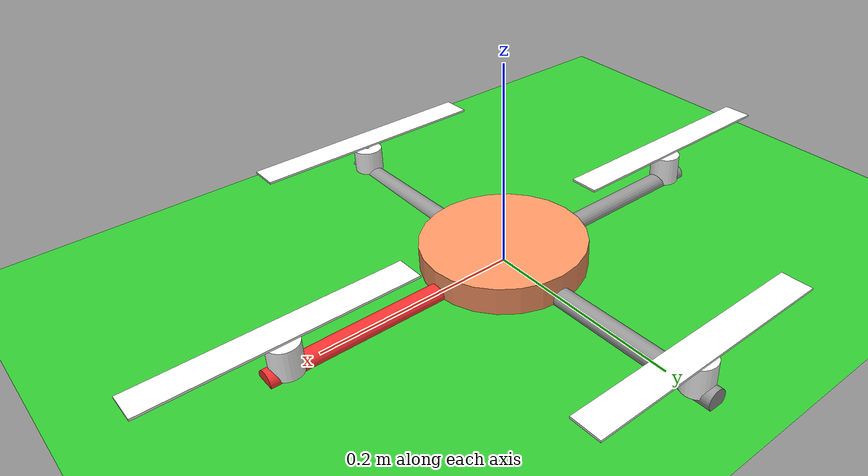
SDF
<?xml version="1.0"?>
<sdf version="1.5">
  <world name="mrsim">
    <physics name='1ms' type='unused'>
      <max_step_size>0.002000</max_step_size>
      <real_time_factor>1.000000</real_time_factor>
      <real_time_update_rate>500.000000</real_time_update_rate>
      <gravity>0 0 -9.81</gravity>
      <magnetic_field>23.816e-6 -0.41e-6 -39.829e-6</magnetic_field>
    </physics>

    <light type="directional" name="sun">
      <cast_shadows>true</cast_shadows>
      <pose>0 0 10 0 0 0</pose>
      <diffuse>0.8 0.8 0.8 1</diffuse>
      <specular>0.2 0.2 0.2 1</specular>
      <attenuation>
        <range>1000</range>
        <constant>0.9</constant>
        <linear>0.01</linear>
        <quadratic>0.001</quadratic>
      </attenuation>
      <direction>-0.5 0.1 -0.9</direction>
    </light>

    <model name="ground_plane">
      <static>true</static>
      <link name="link">
        <collision name="collision">
          <geometry>
            <plane>
              <normal>0 0 1.0</normal>
              <size>100 100</size>
            </plane>
          </geometry>
        </collision>
        <visual name="visual">
          <geometry>
            <plane>
              <normal>0 0 1.0</normal>
              <size>100 100</size>
            </plane>
          </geometry>
          <material>
            <ambient>0.2 0.8 0.2 1</ambient>
            <diffuse>0.2 0.8 0.2 1</diffuse>
            <specular>0.2 0.8 0.2 1</specular>
          </material>
        </visual>
      </link>
    </model>

    <include>
      <uri>model://mrsim-quadrotor</uri>
      <name>qr4</name>
      <pose>0 0 0 0.025 0 0</pose>
    </include>

    <plugin name="optitrack" filename="optitrack-gazebo.so">
      <hz>100</hz>
      <port>1509</port>
      <publish>
        <link>qr4::base</link>
        <name>QR_4</name>
      </publish>
    </plugin>
  </world>
</sdf>

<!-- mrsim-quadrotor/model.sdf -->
<sdf version="1.5">
  <model name="mrsim-quadrotor">
    <link name="base">
      <inertial>
        <mass>1.0</mass>
        <inertia>
          <ixx>0.015</ixx><ixy>0</ixy><ixz>0</ixz>
          <iyy>0.015</iyy><iyz>0</iyz>
          <izz>0.007</izz>
        </inertia>
      </inertial>

      <collision name="base">
        <geometry>
          <cylinder><radius>0.1</radius><length>0.05</length></cylinder>
        </geometry>
      </collision>
      <!-- three spheres to make contact stable -->
      <collision name="land_1">
        <pose>0.1 0 0 0 0 0</pose>
        <geometry>
          <sphere><radius>0.03</radius></sphere>
        </geometry>
      </collision>
      <collision name="land_2">
        <pose>-0.05 0.086 0 0 0 0</pose>
        <geometry>
          <sphere><radius>0.03</radius></sphere>
        </geometry>
      </collision>
      <collision name="land_3">
        <pose>-0.05 -0.086 0 0 0 0</pose>
        <geometry>
          <sphere><radius>0.03</radius></sphere>
        </geometry>
      </collision>

      <visual name="body">
        <geometry>
          <cylinder><radius>0.08</radius><length>0.05</length></cylinder>
        </geometry>
        <material>
          <ambient>1.0 0.6 0.4 1</ambient>
          <diffuse>1.0 0.6 0.4 1</diffuse>
        </material>
      </visual>

      <visual name="arm-1">
        <pose>0.125 0 0 0 1.5708 0</pose>
        <geometry>
          <cylinder><radius>0.01</radius><length>0.25</length></cylinder>
        </geometry>
        <material>
          <ambient>1.0 0.2 0.2 1</ambient>
          <diffuse>1.0 0.2 0.2 1</diffuse>
        </material>
      </visual>
      <visual name="arm-2">
        <pose>0 0.125 0 0 1.5708 1.5708</pose>
        <geometry>
          <cylinder><radius>0.01</radius><length>0.25</length></cylinder>
        </geometry>
        <material>
          <ambient>0.6 0.6 0.6 1</ambient>
          <diffuse>0.6 0.6 0.6 1</diffuse>
        </material>
      </visual>
      <visual name="arm-3">
        <pose>-0.125 0 0 0 1.5708 0</pose>
        <geometry>
          <cylinder><radius>0.01</radius><length>0.25</length></cylinder>
        </geometry>
        <material>
          <ambient>0.6 0.6 0.6 1</ambient>
          <diffuse>0.6 0.6 0.6 1</diffuse>
        </material>
      </visual>
      <visual name="arm-4">
        <pose>0 -0.125 0 0 1.5708 1.5708</pose>
        <geometry>
          <cylinder><radius>0.01</radius><length>0.25</length></cylinder>
        </geometry>
        <material>
          <ambient>0.6 0.6 0.6 1</ambient>
          <diffuse>0.6 0.6 0.6 1</diffuse>
        </material>
      </visual>
    </link>

    <include>
      <uri>model://mrsim-rotor</uri>
      <name>rotor-1</name>
      <pose>0.23 0 0 0 0 0</pose>
    </include>
    <joint name="motor-1" type="revolute">
      <parent>base</parent>
      <child>rotor-1::propeller</child>
      <axis><xyz>0 0 1</xyz></axis>
    </joint>

    <include>
      <uri>model://mrsim-rotor</uri>
      <name>rotor-2</name>
      <pose>0 0.23 0 0 0 0</pose>
    </include>
    <joint name="motor-2" type="revolute">
      <parent>base</parent>
      <child>rotor-2::propeller</child>
      <axis><xyz>0 0 1</xyz></axis>
    </joint>

    <include>
      <uri>model://mrsim-rotor</uri>
      <name>rotor-3</name>
      <pose>-0.23 0 0 0 0 0</pose>
    </include>
    <joint name="motor-3" type="revolute">
      <parent>base</parent>
      <child>rotor-3::propeller</child>
      <axis><xyz>0 0 1</xyz></axis>
    </joint>

    <include>
      <uri>model://mrsim-rotor</uri>
      <name>rotor-4</name>
      <pose>0 -0.23 0 0 0 0</pose>
    </include>
    <joint name="motor-4" type="revolute">
      <parent>base</parent>
      <child>rotor-4::propeller</child>
      <axis><xyz>0 0 1</xyz></axis>
    </joint>

    <plugin name="mrsim" filename="mrsim-gazebo.so">
      <link>base</link>

      <rotors>
        <noise>0.03</noise>
        <cf>6.5e-4</cf>
        <ct>1e-5</ct>
        <vfxy>0.5</vfxy><vfz>0.5</vfz>
        <vtxy>0.5</vtxy><vtz>0.5</vtz>
        <rotor><joint spin="cw">motor-1</joint></rotor>
        <rotor><joint spin="ccw">motor-2</joint></rotor>
        <rotor><joint spin="cw">motor-3</joint></rotor>
        <rotor><joint spin="ccw">motor-4</joint></rotor>
      </rotors>

      <!-- optionnally specify an explicit allocation matrix -->
    </plugin>
</model>
</sdf>

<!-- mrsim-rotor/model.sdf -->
<sdf version="1.5">
  <model name="mrsim-rotor">
    <link name="propeller">
      <inertial>
        <mass>0.07</mass>
        <inertia>
          <ixx>4e-5</ixx><ixy>0</ixy><ixz>0</ixz>
          <iyy>4e-5</iyy><iyz>0</iyz>
          <izz>8e-5</izz>
        </inertia>
      </inertial>

      <collision name="collision">
        <pose>0 0 0.04 0 0 0</pose>
        <geometry>
          <cylinder><radius>0.127</radius><length>0.002</length></cylinder>
        </geometry>
      </collision>

      <visual name="motor">
        <pose>0 0 0.015 0 0 0</pose>
        <geometry>
          <cylinder><radius>0.015</radius><length>0.03</length></cylinder>
        </geometry>
        <material>
          <ambient>0.1 0.1 0.1 1</ambient>
          <diffuse>1.0 1.0 1.0 1</diffuse>
        </material>
      </visual>

      <visual name="axle">
        <pose>0 0 0.035 0 0 0</pose>
        <geometry>
          <cylinder><radius>0.002</radius><length>0.01</length></cylinder>
        </geometry>
        <material>
          <ambient>0.1 0.1 0.1 1</ambient>
          <diffuse>1.0 1.0 1.0 1</diffuse>
        </material>
      </visual>

      <visual name="blade">
        <pose>0 0 0.04 0 0 0</pose>
        <geometry>
          <box><size>0.25 0.03 0.002</size></box>
        </geometry>
        <material>
          <ambient>0.1 0.1 0.1 1</ambient>
          <diffuse>1.0 1.0 1.0 1</diffuse>
        </material>
      </visual>
    </link>
  </model>
</sdf>
